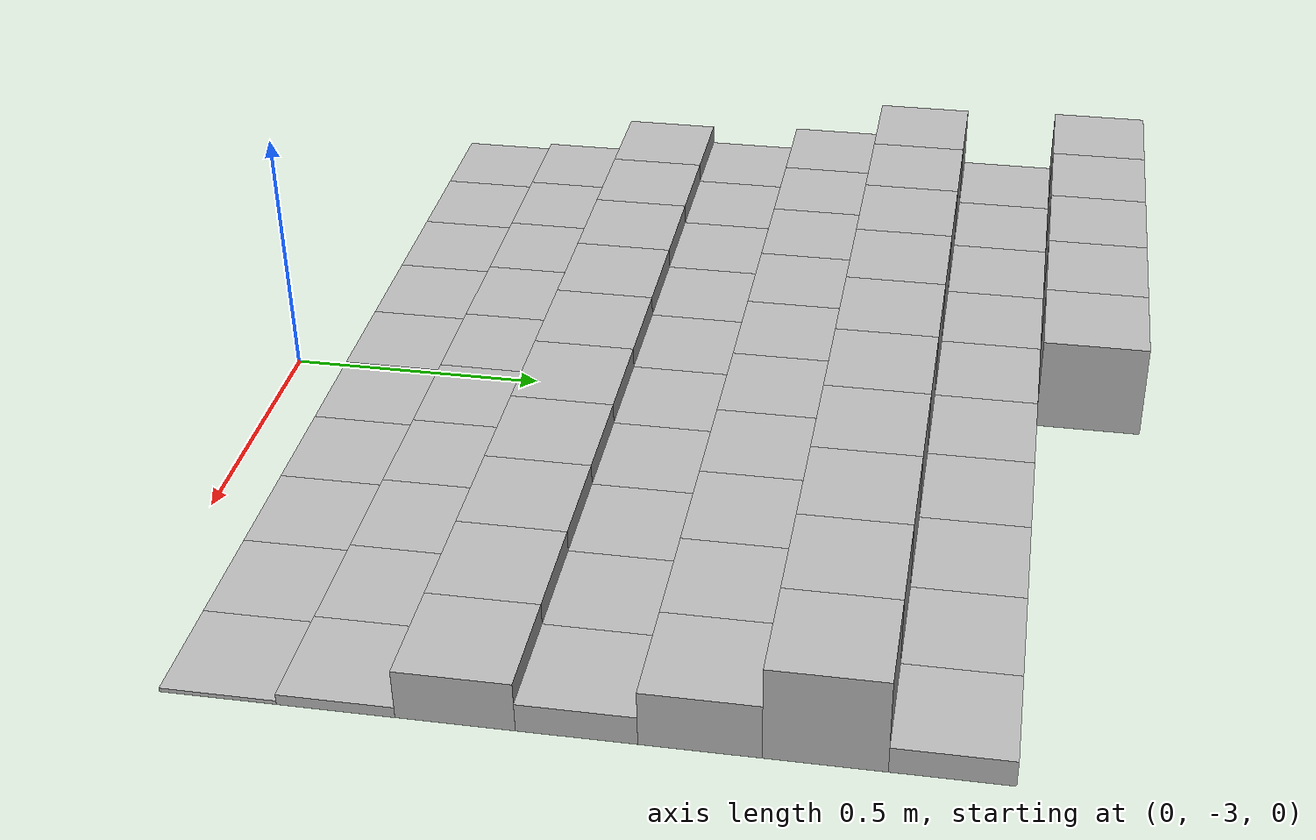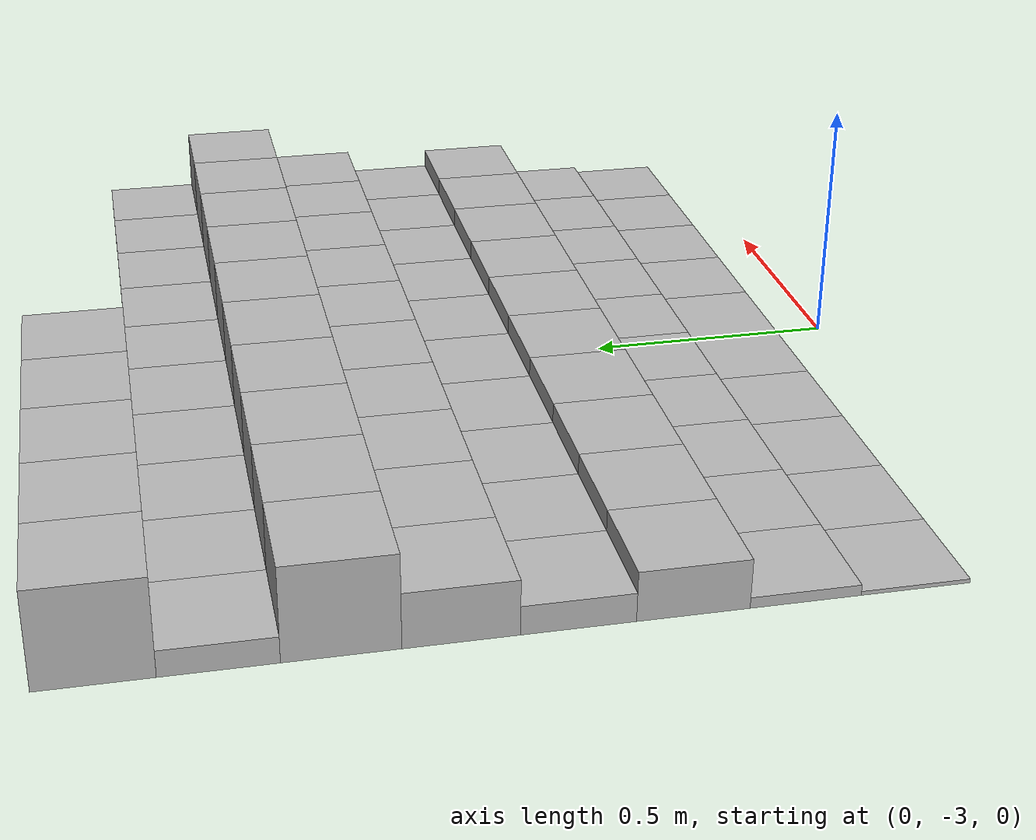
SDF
<sdf version="1.6">
 <model name="Terrain">
  <static>true</static>
  <link name="box_7_0">
   <pose>-0.9 -1.4 0.095913423902 0 0 0</pose>
   <inertial>
    <mass>1.0</mass>
    <inertia><ixx>0.0</ixx><ixy>0.0</ixy><ixz>0.0</ixz><iyy>0.0</iyy><iyz>0.0</iyz><izz>0.0</izz></inertia>
   </inertial>
   <collision name="collision"><geometry><box><size>0.2 0.2 0.191826847804</size></box></geometry></collision>
   <visual name="visual"><geometry><box><size>0.2 0.2 0.191826847804</size></box></geometry></visual>
  </link>
  <link name="box_7_1">
   <pose>-0.7 -1.4 0.095913423902 0 0 0</pose>
   <inertial>
    <mass>1.0</mass>
    <inertia><ixx>0.0</ixx><ixy>0.0</ixy><ixz>0.0</ixz><iyy>0.0</iyy><iyz>0.0</iyz><izz>0.0</izz></inertia>
   </inertial>
   <collision name="collision"><geometry><box><size>0.2 0.2 0.191826847804</size></box></geometry></collision>
   <visual name="visual"><geometry><box><size>0.2 0.2 0.191826847804</size></box></geometry></visual>
  </link>
  <link name="box_7_2">
   <pose>-0.5 -1.4 0.095913423902 0 0 0</pose>
   <inertial>
    <mass>1.0</mass>
    <inertia><ixx>0.0</ixx><ixy>0.0</ixy><ixz>0.0</ixz><iyy>0.0</iyy><iyz>0.0</iyz><izz>0.0</izz></inertia>
   </inertial>
   <collision name="collision"><geometry><box><size>0.2 0.2 0.191826847804</size></box></geometry></collision>
   <visual name="visual"><geometry><box><size>0.2 0.2 0.191826847804</size></box></geometry></visual>
  </link>
  <link name="box_7_3">
   <pose>-0.3 -1.4 0.095913423902 0 0 0</pose>
   <inertial>
    <mass>1.0</mass>
    <inertia><ixx>0.0</ixx><ixy>0.0</ixy><ixz>0.0</ixz><iyy>0.0</iyy><iyz>0.0</iyz><izz>0.0</izz></inertia>
   </inertial>
   <collision name="collision"><geometry><box><size>0.2 0.2 0.191826847804</size></box></geometry></collision>
   <visual name="visual"><geometry><box><size>0.2 0.2 0.191826847804</size></box></geometry></visual>
  </link>
  <link name="box_7_4">
   <pose>-0.1 -1.4 0.095913423902 0 0 0</pose>
   <inertial>
    <mass>1.0</mass>
    <inertia><ixx>0.0</ixx><ixy>0.0</ixy><ixz>0.0</ixz><iyy>0.0</iyy><iyz>0.0</iyz><izz>0.0</izz></inertia>
   </inertial>
   <collision name="collision"><geometry><box><size>0.2 0.2 0.191826847804</size></box></geometry></collision>
   <visual name="visual"><geometry><box><size>0.2 0.2 0.191826847804</size></box></geometry></visual>
  </link>
  <link name="box_8_0">
   <pose>-0.9 -1.6 0.0256300367916 0 0 0</pose>
   <inertial>
    <mass>1.0</mass>
    <inertia><ixx>0.0</ixx><ixy>0.0</ixy><ixz>0.0</ixz><iyy>0.0</iyy><iyz>0.0</iyz><izz>0.0</izz></inertia>
   </inertial>
   <collision name="collision"><geometry><box><size>0.2 0.2 0.0512600735831</size></box></geometry></collision>
   <visual name="visual"><geometry><box><size>0.2 0.2 0.0512600735831</size></box></geometry></visual>
  </link>
  <link name="box_8_1">
   <pose>-0.7 -1.6 0.0256300367916 0 0 0</pose>
   <inertial>
    <mass>1.0</mass>
    <inertia><ixx>0.0</ixx><ixy>0.0</ixy><ixz>0.0</ixz><iyy>0.0</iyy><iyz>0.0</iyz><izz>0.0</izz></inertia>
   </inertial>
   <collision name="collision"><geometry><box><size>0.2 0.2 0.0512600735831</size></box></geometry></collision>
   <visual name="visual"><geometry><box><size>0.2 0.2 0.0512600735831</size></box></geometry></visual>
  </link>
  <link name="box_8_2">
   <pose>-0.5 -1.6 0.0256300367916 0 0 0</pose>
   <inertial>
    <mass>1.0</mass>
    <inertia><ixx>0.0</ixx><ixy>0.0</ixy><ixz>0.0</ixz><iyy>0.0</iyy><iyz>0.0</iyz><izz>0.0</izz></inertia>
   </inertial>
   <collision name="collision"><geometry><box><size>0.2 0.2 0.0512600735831</size></box></geometry></collision>
   <visual name="visual"><geometry><box><size>0.2 0.2 0.0512600735831</size></box></geometry></visual>
  </link>
  <link name="box_8_3">
   <pose>-0.3 -1.6 0.0256300367916 0 0 0</pose>
   <inertial>
    <mass>1.0</mass>
    <inertia><ixx>0.0</ixx><ixy>0.0</ixy><ixz>0.0</ixz><iyy>0.0</iyy><iyz>0.0</iyz><izz>0.0</izz></inertia>
   </inertial>
   <collision name="collision"><geometry><box><size>0.2 0.2 0.0512600735831</size></box></geometry></collision>
   <visual name="visual"><geometry><box><size>0.2 0.2 0.0512600735831</size></box></geometry></visual>
  </link>
  <link name="box_8_4">
   <pose>-0.1 -1.6 0.0256300367916 0 0 0</pose>
   <inertial>
    <mass>1.0</mass>
    <inertia><ixx>0.0</ixx><ixy>0.0</ixy><ixz>0.0</ixz><iyy>0.0</iyy><iyz>0.0</iyz><izz>0.0</izz></inertia>
   </inertial>
   <collision name="collision"><geometry><box><size>0.2 0.2 0.0512600735831</size></box></geometry></collision>
   <visual name="visual"><geometry><box><size>0.2 0.2 0.0512600735831</size></box></geometry></visual>
  </link>
  <link name="box_8_5">
   <pose>0.1 -1.6 0.0256300367916 0 0 0</pose>
   <inertial>
    <mass>1.0</mass>
    <inertia><ixx>0.0</ixx><ixy>0.0</ixy><ixz>0.0</ixz><iyy>0.0</iyy><iyz>0.0</iyz><izz>0.0</izz></inertia>
   </inertial>
   <collision name="collision"><geometry><box><size>0.2 0.2 0.0512600735831</size></box></geometry></collision>
   <visual name="visual"><geometry><box><size>0.2 0.2 0.0512600735831</size></box></geometry></visual>
  </link>
  <link name="box_8_6">
   <pose>0.3 -1.6 0.0256300367916 0 0 0</pose>
   <inertial>
    <mass>1.0</mass>
    <inertia><ixx>0.0</ixx><ixy>0.0</ixy><ixz>0.0</ixz><iyy>0.0</iyy><iyz>0.0</iyz><izz>0.0</izz></inertia>
   </inertial>
   <collision name="collision"><geometry><box><size>0.2 0.2 0.0512600735831</size></box></geometry></collision>
   <visual name="visual"><geometry><box><size>0.2 0.2 0.0512600735831</size></box></geometry></visual>
  </link>
  <link name="box_8_7">
   <pose>0.5 -1.6 0.0256300367916 0 0 0</pose>
   <inertial>
    <mass>1.0</mass>
    <inertia><ixx>0.0</ixx><ixy>0.0</ixy><ixz>0.0</ixz><iyy>0.0</iyy><iyz>0.0</iyz><izz>0.0</izz></inertia>
   </inertial>
   <collision name="collision"><geometry><box><size>0.2 0.2 0.0512600735831</size></box></geometry></collision>
   <visual name="visual"><geometry><box><size>0.2 0.2 0.0512600735831</size></box></geometry></visual>
  </link>
  <link name="box_8_8">
   <pose>0.7 -1.6 0.0256300367916 0 0 0</pose>
   <inertial>
    <mass>1.0</mass>
    <inertia><ixx>0.0</ixx><ixy>0.0</ixy><ixz>0.0</ixz><iyy>0.0</iyy><iyz>0.0</iyz><izz>0.0</izz></inertia>
   </inertial>
   <collision name="collision"><geometry><box><size>0.2 0.2 0.0512600735831</size></box></geometry></collision>
   <visual name="visual"><geometry><box><size>0.2 0.2 0.0512600735831</size></box></geometry></visual>
  </link>
  <link name="box_8_9">
   <pose>0.9 -1.6 0.0256300367916 0 0 0</pose>
   <inertial>
    <mass>1.0</mass>
    <inertia><ixx>0.0</ixx><ixy>0.0</ixy><ixz>0.0</ixz><iyy>0.0</iyy><iyz>0.0</iyz><izz>0.0</izz></inertia>
   </inertial>
   <collision name="collision"><geometry><box><size>0.2 0.2 0.0512600735831</size></box></geometry></collision>
   <visual name="visual"><geometry><box><size>0.2 0.2 0.0512600735831</size></box></geometry></visual>
  </link>
  <link name="box_9_0">
   <pose>-0.9 -1.8 0.092249750525 0 0 0</pose>
   <inertial>
    <mass>1.0</mass>
    <inertia><ixx>0.0</ixx><ixy>0.0</ixy><ixz>0.0</ixz><iyy>0.0</iyy><iyz>0.0</iyz><izz>0.0</izz></inertia>
   </inertial>
   <collision name="collision"><geometry><box><size>0.2 0.2 0.18449950105</size></box></geometry></collision>
   <visual name="visual"><geometry><box><size>0.2 0.2 0.18449950105</size></box></geometry></visual>
  </link>
  <link name="box_9_1">
   <pose>-0.7 -1.8 0.092249750525 0 0 0</pose>
   <inertial>
    <mass>1.0</mass>
    <inertia><ixx>0.0</ixx><ixy>0.0</ixy><ixz>0.0</ixz><iyy>0.0</iyy><iyz>0.0</iyz><izz>0.0</izz></inertia>
   </inertial>
   <collision name="collision"><geometry><box><size>0.2 0.2 0.18449950105</size></box></geometry></collision>
   <visual name="visual"><geometry><box><size>0.2 0.2 0.18449950105</size></box></geometry></visual>
  </link>
  <link name="box_9_2">
   <pose>-0.5 -1.8 0.092249750525 0 0 0</pose>
   <inertial>
    <mass>1.0</mass>
    <inertia><ixx>0.0</ixx><ixy>0.0</ixy><ixz>0.0</ixz><iyy>0.0</iyy><iyz>0.0</iyz><izz>0.0</izz></inertia>
   </inertial>
   <collision name="collision"><geometry><box><size>0.2 0.2 0.18449950105</size></box></geometry></collision>
   <visual name="visual"><geometry><box><size>0.2 0.2 0.18449950105</size></box></geometry></visual>
  </link>
  <link name="box_9_3">
   <pose>-0.3 -1.8 0.092249750525 0 0 0</pose>
   <inertial>
    <mass>1.0</mass>
    <inertia><ixx>0.0</ixx><ixy>0.0</ixy><ixz>0.0</ixz><iyy>0.0</iyy><iyz>0.0</iyz><izz>0.0</izz></inertia>
   </inertial>
   <collision name="collision"><geometry><box><size>0.2 0.2 0.18449950105</size></box></geometry></collision>
   <visual name="visual"><geometry><box><size>0.2 0.2 0.18449950105</size></box></geometry></visual>
  </link>
  <link name="box_9_4">
   <pose>-0.1 -1.8 0.092249750525 0 0 0</pose>
   <inertial>
    <mass>1.0</mass>
    <inertia><ixx>0.0</ixx><ixy>0.0</ixy><ixz>0.0</ixz><iyy>0.0</iyy><iyz>0.0</iyz><izz>0.0</izz></inertia>
   </inertial>
   <collision name="collision"><geometry><box><size>0.2 0.2 0.18449950105</size></box></geometry></collision>
   <visual name="visual"><geometry><box><size>0.2 0.2 0.18449950105</size></box></geometry></visual>
  </link>
  <link name="box_9_5">
   <pose>0.1 -1.8 0.092249750525 0 0 0</pose>
   <inertial>
    <mass>1.0</mass>
    <inertia><ixx>0.0</ixx><ixy>0.0</ixy><ixz>0.0</ixz><iyy>0.0</iyy><iyz>0.0</iyz><izz>0.0</izz></inertia>
   </inertial>
   <collision name="collision"><geometry><box><size>0.2 0.2 0.18449950105</size></box></geometry></collision>
   <visual name="visual"><geometry><box><size>0.2 0.2 0.18449950105</size></box></geometry></visual>
  </link>
  <link name="box_9_6">
   <pose>0.3 -1.8 0.092249750525 0 0 0</pose>
   <inertial>
    <mass>1.0</mass>
    <inertia><ixx>0.0</ixx><ixy>0.0</ixy><ixz>0.0</ixz><iyy>0.0</iyy><iyz>0.0</iyz><izz>0.0</izz></inertia>
   </inertial>
   <collision name="collision"><geometry><box><size>0.2 0.2 0.18449950105</size></box></geometry></collision>
   <visual name="visual"><geometry><box><size>0.2 0.2 0.18449950105</size></box></geometry></visual>
  </link>
  <link name="box_9_7">
   <pose>0.5 -1.8 0.092249750525 0 0 0</pose>
   <inertial>
    <mass>1.0</mass>
    <inertia><ixx>0.0</ixx><ixy>0.0</ixy><ixz>0.0</ixz><iyy>0.0</iyy><iyz>0.0</iyz><izz>0.0</izz></inertia>
   </inertial>
   <collision name="collision"><geometry><box><size>0.2 0.2 0.18449950105</size></box></geometry></collision>
   <visual name="visual"><geometry><box><size>0.2 0.2 0.18449950105</size></box></geometry></visual>
  </link>
  <link name="box_9_8">
   <pose>0.7 -1.8 0.092249750525 0 0 0</pose>
   <inertial>
    <mass>1.0</mass>
    <inertia><ixx>0.0</ixx><ixy>0.0</ixy><ixz>0.0</ixz><iyy>0.0</iyy><iyz>0.0</iyz><izz>0.0</izz></inertia>
   </inertial>
   <collision name="collision"><geometry><box><size>0.2 0.2 0.18449950105</size></box></geometry></collision>
   <visual name="visual"><geometry><box><size>0.2 0.2 0.18449950105</size></box></geometry></visual>
  </link>
  <link name="box_9_9">
   <pose>0.9 -1.8 0.092249750525 0 0 0</pose>
   <inertial>
    <mass>1.0</mass>
    <inertia><ixx>0.0</ixx><ixy>0.0</ixy><ixz>0.0</ixz><iyy>0.0</iyy><iyz>0.0</iyz><izz>0.0</izz></inertia>
   </inertial>
   <collision name="collision"><geometry><box><size>0.2 0.2 0.18449950105</size></box></geometry></collision>
   <visual name="visual"><geometry><box><size>0.2 0.2 0.18449950105</size></box></geometry></visual>
  </link>
  <link name="box_10_0">
   <pose>-0.9 -2.0 0.0541871951519 0 0 0</pose>
   <inertial>
    <mass>1.0</mass>
    <inertia><ixx>0.0</ixx><ixy>0.0</ixy><ixz>0.0</ixz><iyy>0.0</iyy><iyz>0.0</iyz><izz>0.0</izz></inertia>
   </inertial>
   <collision name="collision"><geometry><box><size>0.2 0.2 0.108374390304</size></box></geometry></collision>
   <visual name="visual"><geometry><box><size>0.2 0.2 0.108374390304</size></box></geometry></visual>
  </link>
  <link name="box_10_1">
   <pose>-0.7 -2.0 0.0541871951519 0 0 0</pose>
   <inertial>
    <mass>1.0</mass>
    <inertia><ixx>0.0</ixx><ixy>0.0</ixy><ixz>0.0</ixz><iyy>0.0</iyy><iyz>0.0</iyz><izz>0.0</izz></inertia>
   </inertial>
   <collision name="collision"><geometry><box><size>0.2 0.2 0.108374390304</size></box></geometry></collision>
   <visual name="visual"><geometry><box><size>0.2 0.2 0.108374390304</size></box></geometry></visual>
  </link>
  <link name="box_10_2">
   <pose>-0.5 -2.0 0.0541871951519 0 0 0</pose>
   <inertial>
    <mass>1.0</mass>
    <inertia><ixx>0.0</ixx><ixy>0.0</ixy><ixz>0.0</ixz><iyy>0.0</iyy><iyz>0.0</iyz><izz>0.0</izz></inertia>
   </inertial>
   <collision name="collision"><geometry><box><size>0.2 0.2 0.108374390304</size></box></geometry></collision>
   <visual name="visual"><geometry><box><size>0.2 0.2 0.108374390304</size></box></geometry></visual>
  </link>
  <link name="box_10_3">
   <pose>-0.3 -2.0 0.0541871951519 0 0 0</pose>
   <inertial>
    <mass>1.0</mass>
    <inertia><ixx>0.0</ixx><ixy>0.0</ixy><ixz>0.0</ixz><iyy>0.0</iyy><iyz>0.0</iyz><izz>0.0</izz></inertia>
   </inertial>
   <collision name="collision"><geometry><box><size>0.2 0.2 0.108374390304</size></box></geometry></collision>
   <visual name="visual"><geometry><box><size>0.2 0.2 0.108374390304</size></box></geometry></visual>
  </link>
  <link name="box_10_4">
   <pose>-0.1 -2.0 0.0541871951519 0 0 0</pose>
   <inertial>
    <mass>1.0</mass>
    <inertia><ixx>0.0</ixx><ixy>0.0</ixy><ixz>0.0</ixz><iyy>0.0</iyy><iyz>0.0</iyz><izz>0.0</izz></inertia>
   </inertial>
   <collision name="collision"><geometry><box><size>0.2 0.2 0.108374390304</size></box></geometry></collision>
   <visual name="visual"><geometry><box><size>0.2 0.2 0.108374390304</size></box></geometry></visual>
  </link>
  <link name="box_10_5">
   <pose>0.1 -2.0 0.0541871951519 0 0 0</pose>
   <inertial>
    <mass>1.0</mass>
    <inertia><ixx>0.0</ixx><ixy>0.0</ixy><ixz>0.0</ixz><iyy>0.0</iyy><iyz>0.0</iyz><izz>0.0</izz></inertia>
   </inertial>
   <collision name="collision"><geometry><box><size>0.2 0.2 0.108374390304</size></box></geometry></collision>
   <visual name="visual"><geometry><box><size>0.2 0.2 0.108374390304</size></box></geometry></visual>
  </link>
  <link name="box_10_6">
   <pose>0.3 -2.0 0.0541871951519 0 0 0</pose>
   <inertial>
    <mass>1.0</mass>
    <inertia><ixx>0.0</ixx><ixy>0.0</ixy><ixz>0.0</ixz><iyy>0.0</iyy><iyz>0.0</iyz><izz>0.0</izz></inertia>
   </inertial>
   <collision name="collision"><geometry><box><size>0.2 0.2 0.108374390304</size></box></geometry></collision>
   <visual name="visual"><geometry><box><size>0.2 0.2 0.108374390304</size></box></geometry></visual>
  </link>
  <link name="box_10_7">
   <pose>0.5 -2.0 0.0541871951519 0 0 0</pose>
   <inertial>
    <mass>1.0</mass>
    <inertia><ixx>0.0</ixx><ixy>0.0</ixy><ixz>0.0</ixz><iyy>0.0</iyy><iyz>0.0</iyz><izz>0.0</izz></inertia>
   </inertial>
   <collision name="collision"><geometry><box><size>0.2 0.2 0.108374390304</size></box></geometry></collision>
   <visual name="visual"><geometry><box><size>0.2 0.2 0.108374390304</size></box></geometry></visual>
  </link>
  <link name="box_10_8">
   <pose>0.7 -2.0 0.0541871951519 0 0 0</pose>
   <inertial>
    <mass>1.0</mass>
    <inertia><ixx>0.0</ixx><ixy>0.0</ixy><ixz>0.0</ixz><iyy>0.0</iyy><iyz>0.0</iyz><izz>0.0</izz></inertia>
   </inertial>
   <collision name="collision"><geometry><box><size>0.2 0.2 0.108374390304</size></box></geometry></collision>
   <visual name="visual"><geometry><box><size>0.2 0.2 0.108374390304</size></box></geometry></visual>
  </link>
  <link name="box_10_9">
   <pose>0.9 -2.0 0.0541871951519 0 0 0</pose>
   <inertial>
    <mass>1.0</mass>
    <inertia><ixx>0.0</ixx><ixy>0.0</ixy><ixz>0.0</ixz><iyy>0.0</iyy><iyz>0.0</iyz><izz>0.0</izz></inertia>
   </inertial>
   <collision name="collision"><geometry><box><size>0.2 0.2 0.108374390304</size></box></geometry></collision>
   <visual name="visual"><geometry><box><size>0.2 0.2 0.108374390304</size></box></geometry></visual>
  </link>
  <link name="box_11_0">
   <pose>-0.9 -2.2 0.0282259502266 0 0 0</pose>
   <inertial>
    <mass>1.0</mass>
    <inertia><ixx>0.0</ixx><ixy>0.0</ixy><ixz>0.0</ixz><iyy>0.0</iyy><iyz>0.0</iyz><izz>0.0</izz></inertia>
   </inertial>
   <collision name="collision"><geometry><box><size>0.2 0.2 0.0564519004532</size></box></geometry></collision>
   <visual name="visual"><geometry><box><size>0.2 0.2 0.0564519004532</size></box></geometry></visual>
  </link>
  <link name="box_11_1">
   <pose>-0.7 -2.2 0.0282259502266 0 0 0</pose>
   <inertial>
    <mass>1.0</mass>
    <inertia><ixx>0.0</ixx><ixy>0.0</ixy><ixz>0.0</ixz><iyy>0.0</iyy><iyz>0.0</iyz><izz>0.0</izz></inertia>
   </inertial>
   <collision name="collision"><geometry><box><size>0.2 0.2 0.0564519004532</size></box></geometry></collision>
   <visual name="visual"><geometry><box><size>0.2 0.2 0.0564519004532</size></box></geometry></visual>
  </link>
  <link name="box_11_2">
   <pose>-0.5 -2.2 0.0282259502266 0 0 0</pose>
   <inertial>
    <mass>1.0</mass>
    <inertia><ixx>0.0</ixx><ixy>0.0</ixy><ixz>0.0</ixz><iyy>0.0</iyy><iyz>0.0</iyz><izz>0.0</izz></inertia>
   </inertial>
   <collision name="collision"><geometry><box><size>0.2 0.2 0.0564519004532</size></box></geometry></collision>
   <visual name="visual"><geometry><box><size>0.2 0.2 0.0564519004532</size></box></geometry></visual>
  </link>
  <link name="box_11_3">
   <pose>-0.3 -2.2 0.0282259502266 0 0 0</pose>
   <inertial>
    <mass>1.0</mass>
    <inertia><ixx>0.0</ixx><ixy>0.0</ixy><ixz>0.0</ixz><iyy>0.0</iyy><iyz>0.0</iyz><izz>0.0</izz></inertia>
   </inertial>
   <collision name="collision"><geometry><box><size>0.2 0.2 0.0564519004532</size></box></geometry></collision>
   <visual name="visual"><geometry><box><size>0.2 0.2 0.0564519004532</size></box></geometry></visual>
  </link>
  <link name="box_11_4">
   <pose>-0.1 -2.2 0.0282259502266 0 0 0</pose>
   <inertial>
    <mass>1.0</mass>
    <inertia><ixx>0.0</ixx><ixy>0.0</ixy><ixz>0.0</ixz><iyy>0.0</iyy><iyz>0.0</iyz><izz>0.0</izz></inertia>
   </inertial>
   <collision name="collision"><geometry><box><size>0.2 0.2 0.0564519004532</size></box></geometry></collision>
   <visual name="visual"><geometry><box><size>0.2 0.2 0.0564519004532</size></box></geometry></visual>
  </link>
  <link name="box_11_5">
   <pose>0.1 -2.2 0.0282259502266 0 0 0</pose>
   <inertial>
    <mass>1.0</mass>
    <inertia><ixx>0.0</ixx><ixy>0.0</ixy><ixz>0.0</ixz><iyy>0.0</iyy><iyz>0.0</iyz><izz>0.0</izz></inertia>
   </inertial>
   <collision name="collision"><geometry><box><size>0.2 0.2 0.0564519004532</size></box></geometry></collision>
   <visual name="visual"><geometry><box><size>0.2 0.2 0.0564519004532</size></box></geometry></visual>
  </link>
  <link name="box_11_6">
   <pose>0.3 -2.2 0.0282259502266 0 0 0</pose>
   <inertial>
    <mass>1.0</mass>
    <inertia><ixx>0.0</ixx><ixy>0.0</ixy><ixz>0.0</ixz><iyy>0.0</iyy><iyz>0.0</iyz><izz>0.0</izz></inertia>
   </inertial>
   <collision name="collision"><geometry><box><size>0.2 0.2 0.0564519004532</size></box></geometry></collision>
   <visual name="visual"><geometry><box><size>0.2 0.2 0.0564519004532</size></box></geometry></visual>
  </link>
  <link name="box_11_7">
   <pose>0.5 -2.2 0.0282259502266 0 0 0</pose>
   <inertial>
    <mass>1.0</mass>
    <inertia><ixx>0.0</ixx><ixy>0.0</ixy><ixz>0.0</ixz><iyy>0.0</iyy><iyz>0.0</iyz><izz>0.0</izz></inertia>
   </inertial>
   <collision name="collision"><geometry><box><size>0.2 0.2 0.0564519004532</size></box></geometry></collision>
   <visual name="visual"><geometry><box><size>0.2 0.2 0.0564519004532</size></box></geometry></visual>
  </link>
  <link name="box_11_8">
   <pose>0.7 -2.2 0.0282259502266 0 0 0</pose>
   <inertial>
    <mass>1.0</mass>
    <inertia><ixx>0.0</ixx><ixy>0.0</ixy><ixz>0.0</ixz><iyy>0.0</iyy><iyz>0.0</iyz><izz>0.0</izz></inertia>
   </inertial>
   <collision name="collision"><geometry><box><size>0.2 0.2 0.0564519004532</size></box></geometry></collision>
   <visual name="visual"><geometry><box><size>0.2 0.2 0.0564519004532</size></box></geometry></visual>
  </link>
  <link name="box_11_9">
   <pose>0.9 -2.2 0.0282259502266 0 0 0</pose>
   <inertial>
    <mass>1.0</mass>
    <inertia><ixx>0.0</ixx><ixy>0.0</ixy><ixz>0.0</ixz><iyy>0.0</iyy><iyz>0.0</iyz><izz>0.0</izz></inertia>
   </inertial>
   <collision name="collision"><geometry><box><size>0.2 0.2 0.0564519004532</size></box></geometry></collision>
   <visual name="visual"><geometry><box><size>0.2 0.2 0.0564519004532</size></box></geometry></visual>
  </link>
  <link name="box_12_0">
   <pose>-0.9 -2.4 0.0489877813391 0 0 0</pose>
   <inertial>
    <mass>1.0</mass>
    <inertia><ixx>0.0</ixx><ixy>0.0</ixy><ixz>0.0</ixz><iyy>0.0</iyy><iyz>0.0</iyz><izz>0.0</izz></inertia>
   </inertial>
   <collision name="collision"><geometry><box><size>0.2 0.2 0.0979755626782</size></box></geometry></collision>
   <visual name="visual"><geometry><box><size>0.2 0.2 0.0979755626782</size></box></geometry></visual>
  </link>
  <link name="box_12_1">
   <pose>-0.7 -2.4 0.0489877813391 0 0 0</pose>
   <inertial>
    <mass>1.0</mass>
    <inertia><ixx>0.0</ixx><ixy>0.0</ixy><ixz>0.0</ixz><iyy>0.0</iyy><iyz>0.0</iyz><izz>0.0</izz></inertia>
   </inertial>
   <collision name="collision"><geometry><box><size>0.2 0.2 0.0979755626782</size></box></geometry></collision>
   <visual name="visual"><geometry><box><size>0.2 0.2 0.0979755626782</size></box></geometry></visual>
  </link>
  <link name="box_12_2">
   <pose>-0.5 -2.4 0.0489877813391 0 0 0</pose>
   <inertial>
    <mass>1.0</mass>
    <inertia><ixx>0.0</ixx><ixy>0.0</ixy><ixz>0.0</ixz><iyy>0.0</iyy><iyz>0.0</iyz><izz>0.0</izz></inertia>
   </inertial>
   <collision name="collision"><geometry><box><size>0.2 0.2 0.0979755626782</size></box></geometry></collision>
   <visual name="visual"><geometry><box><size>0.2 0.2 0.0979755626782</size></box></geometry></visual>
  </link>
  <link name="box_12_3">
   <pose>-0.3 -2.4 0.0489877813391 0 0 0</pose>
   <inertial>
    <mass>1.0</mass>
    <inertia><ixx>0.0</ixx><ixy>0.0</ixy><ixz>0.0</ixz><iyy>0.0</iyy><iyz>0.0</iyz><izz>0.0</izz></inertia>
   </inertial>
   <collision name="collision"><geometry><box><size>0.2 0.2 0.0979755626782</size></box></geometry></collision>
   <visual name="visual"><geometry><box><size>0.2 0.2 0.0979755626782</size></box></geometry></visual>
  </link>
  <link name="box_12_4">
   <pose>-0.1 -2.4 0.0489877813391 0 0 0</pose>
   <inertial>
    <mass>1.0</mass>
    <inertia><ixx>0.0</ixx><ixy>0.0</ixy><ixz>0.0</ixz><iyy>0.0</iyy><iyz>0.0</iyz><izz>0.0</izz></inertia>
   </inertial>
   <collision name="collision"><geometry><box><size>0.2 0.2 0.0979755626782</size></box></geometry></collision>
   <visual name="visual"><geometry><box><size>0.2 0.2 0.0979755626782</size></box></geometry></visual>
  </link>
  <link name="box_12_5">
   <pose>0.1 -2.4 0.0489877813391 0 0 0</pose>
   <inertial>
    <mass>1.0</mass>
    <inertia><ixx>0.0</ixx><ixy>0.0</ixy><ixz>0.0</ixz><iyy>0.0</iyy><iyz>0.0</iyz><izz>0.0</izz></inertia>
   </inertial>
   <collision name="collision"><geometry><box><size>0.2 0.2 0.0979755626782</size></box></geometry></collision>
   <visual name="visual"><geometry><box><size>0.2 0.2 0.0979755626782</size></box></geometry></visual>
  </link>
  <link name="box_12_6">
   <pose>0.3 -2.4 0.0489877813391 0 0 0</pose>
   <inertial>
    <mass>1.0</mass>
    <inertia><ixx>0.0</ixx><ixy>0.0</ixy><ixz>0.0</ixz><iyy>0.0</iyy><iyz>0.0</iyz><izz>0.0</izz></inertia>
   </inertial>
   <collision name="collision"><geometry><box><size>0.2 0.2 0.0979755626782</size></box></geometry></collision>
   <visual name="visual"><geometry><box><size>0.2 0.2 0.0979755626782</size></box></geometry></visual>
  </link>
  <link name="box_12_7">
   <pose>0.5 -2.4 0.0489877813391 0 0 0</pose>
   <inertial>
    <mass>1.0</mass>
    <inertia><ixx>0.0</ixx><ixy>0.0</ixy><ixz>0.0</ixz><iyy>0.0</iyy><iyz>0.0</iyz><izz>0.0</izz></inertia>
   </inertial>
   <collision name="collision"><geometry><box><size>0.2 0.2 0.0979755626782</size></box></geometry></collision>
   <visual name="visual"><geometry><box><size>0.2 0.2 0.0979755626782</size></box></geometry></visual>
  </link>
  <link name="box_12_8">
   <pose>0.7 -2.4 0.0489877813391 0 0 0</pose>
   <inertial>
    <mass>1.0</mass>
    <inertia><ixx>0.0</ixx><ixy>0.0</ixy><ixz>0.0</ixz><iyy>0.0</iyy><iyz>0.0</iyz><izz>0.0</izz></inertia>
   </inertial>
   <collision name="collision"><geometry><box><size>0.2 0.2 0.0979755626782</size></box></geometry></collision>
   <visual name="visual"><geometry><box><size>0.2 0.2 0.0979755626782</size></box></geometry></visual>
  </link>
  <link name="box_12_9">
   <pose>0.9 -2.4 0.0489877813391 0 0 0</pose>
   <inertial>
    <mass>1.0</mass>
    <inertia><ixx>0.0</ixx><ixy>0.0</ixy><ixz>0.0</ixz><iyy>0.0</iyy><iyz>0.0</iyz><izz>0.0</izz></inertia>
   </inertial>
   <collision name="collision"><geometry><box><size>0.2 0.2 0.0979755626782</size></box></geometry></collision>
   <visual name="visual"><geometry><box><size>0.2 0.2 0.0979755626782</size></box></geometry></visual>
  </link>
  <link name="box_13_0">
   <pose>-0.9 -2.6 0.0105278987553 0 0 0</pose>
   <inertial>
    <mass>1.0</mass>
    <inertia><ixx>0.0</ixx><ixy>0.0</ixy><ixz>0.0</ixz><iyy>0.0</iyy><iyz>0.0</iyz><izz>0.0</izz></inertia>
   </inertial>
   <collision name="collision"><geometry><box><size>0.2 0.2 0.0210557975106</size></box></geometry></collision>
   <visual name="visual"><geometry><box><size>0.2 0.2 0.0210557975106</size></box></geometry></visual>
  </link>
  <link name="box_13_1">
   <pose>-0.7 -2.6 0.0105278987553 0 0 0</pose>
   <inertial>
    <mass>1.0</mass>
    <inertia><ixx>0.0</ixx><ixy>0.0</ixy><ixz>0.0</ixz><iyy>0.0</iyy><iyz>0.0</iyz><izz>0.0</izz></inertia>
   </inertial>
   <collision name="collision"><geometry><box><size>0.2 0.2 0.0210557975106</size></box></geometry></collision>
   <visual name="visual"><geometry><box><size>0.2 0.2 0.0210557975106</size></box></geometry></visual>
  </link>
  <link name="box_13_2">
   <pose>-0.5 -2.6 0.0105278987553 0 0 0</pose>
   <inertial>
    <mass>1.0</mass>
    <inertia><ixx>0.0</ixx><ixy>0.0</ixy><ixz>0.0</ixz><iyy>0.0</iyy><iyz>0.0</iyz><izz>0.0</izz></inertia>
   </inertial>
   <collision name="collision"><geometry><box><size>0.2 0.2 0.0210557975106</size></box></geometry></collision>
   <visual name="visual"><geometry><box><size>0.2 0.2 0.0210557975106</size></box></geometry></visual>
  </link>
  <link name="box_13_3">
   <pose>-0.3 -2.6 0.0105278987553 0 0 0</pose>
   <inertial>
    <mass>1.0</mass>
    <inertia><ixx>0.0</ixx><ixy>0.0</ixy><ixz>0.0</ixz><iyy>0.0</iyy><iyz>0.0</iyz><izz>0.0</izz></inertia>
   </inertial>
   <collision name="collision"><geometry><box><size>0.2 0.2 0.0210557975106</size></box></geometry></collision>
   <visual name="visual"><geometry><box><size>0.2 0.2 0.0210557975106</size></box></geometry></visual>
  </link>
  <link name="box_13_4">
   <pose>-0.1 -2.6 0.0105278987553 0 0 0</pose>
   <inertial>
    <mass>1.0</mass>
    <inertia><ixx>0.0</ixx><ixy>0.0</ixy><ixz>0.0</ixz><iyy>0.0</iyy><iyz>0.0</iyz><izz>0.0</izz></inertia>
   </inertial>
   <collision name="collision"><geometry><box><size>0.2 0.2 0.0210557975106</size></box></geometry></collision>
   <visual name="visual"><geometry><box><size>0.2 0.2 0.0210557975106</size></box></geometry></visual>
  </link>
  <link name="box_13_5">
   <pose>0.1 -2.6 0.0105278987553 0 0 0</pose>
   <inertial>
    <mass>1.0</mass>
    <inertia><ixx>0.0</ixx><ixy>0.0</ixy><ixz>0.0</ixz><iyy>0.0</iyy><iyz>0.0</iyz><izz>0.0</izz></inertia>
   </inertial>
   <collision name="collision"><geometry><box><size>0.2 0.2 0.0210557975106</size></box></geometry></collision>
   <visual name="visual"><geometry><box><size>0.2 0.2 0.0210557975106</size></box></geometry></visual>
  </link>
  <link name="box_13_6">
   <pose>0.3 -2.6 0.0105278987553 0 0 0</pose>
   <inertial>
    <mass>1.0</mass>
    <inertia><ixx>0.0</ixx><ixy>0.0</ixy><ixz>0.0</ixz><iyy>0.0</iyy><iyz>0.0</iyz><izz>0.0</izz></inertia>
   </inertial>
   <collision name="collision"><geometry><box><size>0.2 0.2 0.0210557975106</size></box></geometry></collision>
   <visual name="visual"><geometry><box><size>0.2 0.2 0.0210557975106</size></box></geometry></visual>
  </link>
  <link name="box_13_7">
   <pose>0.5 -2.6 0.0105278987553 0 0 0</pose>
   <inertial>
    <mass>1.0</mass>
    <inertia><ixx>0.0</ixx><ixy>0.0</ixy><ixz>0.0</ixz><iyy>0.0</iyy><iyz>0.0</iyz><izz>0.0</izz></inertia>
   </inertial>
   <collision name="collision"><geometry><box><size>0.2 0.2 0.0210557975106</size></box></geometry></collision>
   <visual name="visual"><geometry><box><size>0.2 0.2 0.0210557975106</size></box></geometry></visual>
  </link>
  <link name="box_13_8">
   <pose>0.7 -2.6 0.0105278987553 0 0 0</pose>
   <inertial>
    <mass>1.0</mass>
    <inertia><ixx>0.0</ixx><ixy>0.0</ixy><ixz>0.0</ixz><iyy>0.0</iyy><iyz>0.0</iyz><izz>0.0</izz></inertia>
   </inertial>
   <collision name="collision"><geometry><box><size>0.2 0.2 0.0210557975106</size></box></geometry></collision>
   <visual name="visual"><geometry><box><size>0.2 0.2 0.0210557975106</size></box></geometry></visual>
  </link>
  <link name="box_13_9">
   <pose>0.9 -2.6 0.0105278987553 0 0 0</pose>
   <inertial>
    <mass>1.0</mass>
    <inertia><ixx>0.0</ixx><ixy>0.0</ixy><ixz>0.0</ixz><iyy>0.0</iyy><iyz>0.0</iyz><izz>0.0</izz></inertia>
   </inertial>
   <collision name="collision"><geometry><box><size>0.2 0.2 0.0210557975106</size></box></geometry></collision>
   <visual name="visual"><geometry><box><size>0.2 0.2 0.0210557975106</size></box></geometry></visual>
  </link>
  <link name="box_14_0">
   <pose>-0.9 -2.8 0.00386172491007 0 0 0</pose>
   <inertial>
    <mass>1.0</mass>
    <inertia><ixx>0.0</ixx><ixy>0.0</ixy><ixz>0.0</ixz><iyy>0.0</iyy><iyz>0.0</iyz><izz>0.0</izz></inertia>
   </inertial>
   <collision name="collision"><geometry><box><size>0.2 0.2 0.00772344982014</size></box></geometry></collision>
   <visual name="visual"><geometry><box><size>0.2 0.2 0.00772344982014</size></box></geometry></visual>
  </link>
  <link name="box_14_1">
   <pose>-0.7 -2.8 0.00386172491007 0 0 0</pose>
   <inertial>
    <mass>1.0</mass>
    <inertia><ixx>0.0</ixx><ixy>0.0</ixy><ixz>0.0</ixz><iyy>0.0</iyy><iyz>0.0</iyz><izz>0.0</izz></inertia>
   </inertial>
   <collision name="collision"><geometry><box><size>0.2 0.2 0.00772344982014</size></box></geometry></collision>
   <visual name="visual"><geometry><box><size>0.2 0.2 0.00772344982014</size></box></geometry></visual>
  </link>
  <link name="box_14_2">
   <pose>-0.5 -2.8 0.00386172491007 0 0 0</pose>
   <inertial>
    <mass>1.0</mass>
    <inertia><ixx>0.0</ixx><ixy>0.0</ixy><ixz>0.0</ixz><iyy>0.0</iyy><iyz>0.0</iyz><izz>0.0</izz></inertia>
   </inertial>
   <collision name="collision"><geometry><box><size>0.2 0.2 0.00772344982014</size></box></geometry></collision>
   <visual name="visual"><geometry><box><size>0.2 0.2 0.00772344982014</size></box></geometry></visual>
  </link>
  <link name="box_14_3">
   <pose>-0.3 -2.8 0.00386172491007 0 0 0</pose>
   <inertial>
    <mass>1.0</mass>
    <inertia><ixx>0.0</ixx><ixy>0.0</ixy><ixz>0.0</ixz><iyy>0.0</iyy><iyz>0.0</iyz><izz>0.0</izz></inertia>
   </inertial>
   <collision name="collision"><geometry><box><size>0.2 0.2 0.00772344982014</size></box></geometry></collision>
   <visual name="visual"><geometry><box><size>0.2 0.2 0.00772344982014</size></box></geometry></visual>
  </link>
  <link name="box_14_4">
   <pose>-0.1 -2.8 0.00386172491007 0 0 0</pose>
   <inertial>
    <mass>1.0</mass>
    <inertia><ixx>0.0</ixx><ixy>0.0</ixy><ixz>0.0</ixz><iyy>0.0</iyy><iyz>0.0</iyz><izz>0.0</izz></inertia>
   </inertial>
   <collision name="collision"><geometry><box><size>0.2 0.2 0.00772344982014</size></box></geometry></collision>
   <visual name="visual"><geometry><box><size>0.2 0.2 0.00772344982014</size></box></geometry></visual>
  </link>
  <link name="box_14_5">
   <pose>0.1 -2.8 0.00386172491007 0 0 0</pose>
   <inertial>
    <mass>1.0</mass>
    <inertia><ixx>0.0</ixx><ixy>0.0</ixy><ixz>0.0</ixz><iyy>0.0</iyy><iyz>0.0</iyz><izz>0.0</izz></inertia>
   </inertial>
   <collision name="collision"><geometry><box><size>0.2 0.2 0.00772344982014</size></box></geometry></collision>
   <visual name="visual"><geometry><box><size>0.2 0.2 0.00772344982014</size></box></geometry></visual>
  </link>
  <link name="box_14_6">
   <pose>0.3 -2.8 0.00386172491007 0 0 0</pose>
   <inertial>
    <mass>1.0</mass>
    <inertia><ixx>0.0</ixx><ixy>0.0</ixy><ixz>0.0</ixz><iyy>0.0</iyy><iyz>0.0</iyz><izz>0.0</izz></inertia>
   </inertial>
   <collision name="collision"><geometry><box><size>0.2 0.2 0.00772344982014</size></box></geometry></collision>
   <visual name="visual"><geometry><box><size>0.2 0.2 0.00772344982014</size></box></geometry></visual>
  </link>
  <link name="box_14_7">
   <pose>0.5 -2.8 0.00386172491007 0 0 0</pose>
   <inertial>
    <mass>1.0</mass>
    <inertia><ixx>0.0</ixx><ixy>0.0</ixy><ixz>0.0</ixz><iyy>0.0</iyy><iyz>0.0</iyz><izz>0.0</izz></inertia>
   </inertial>
   <collision name="collision"><geometry><box><size>0.2 0.2 0.00772344982014</size></box></geometry></collision>
   <visual name="visual"><geometry><box><size>0.2 0.2 0.00772344982014</size></box></geometry></visual>
  </link>
  <link name="box_14_8">
   <pose>0.7 -2.8 0.00386172491007 0 0 0</pose>
   <inertial>
    <mass>1.0</mass>
    <inertia><ixx>0.0</ixx><ixy>0.0</ixy><ixz>0.0</ixz><iyy>0.0</iyy><iyz>0.0</iyz><izz>0.0</izz></inertia>
   </inertial>
   <collision name="collision"><geometry><box><size>0.2 0.2 0.00772344982014</size></box></geometry></collision>
   <visual name="visual"><geometry><box><size>0.2 0.2 0.00772344982014</size></box></geometry></visual>
  </link>
  <link name="box_14_9">
   <pose>0.9 -2.8 0.00386172491007 0 0 0</pose>
   <inertial>
    <mass>1.0</mass>
    <inertia><ixx>0.0</ixx><ixy>0.0</ixy><ixz>0.0</ixz><iyy>0.0</iyy><iyz>0.0</iyz><izz>0.0</izz></inertia>
   </inertial>
   <collision name="collision"><geometry><box><size>0.2 0.2 0.00772344982014</size></box></geometry></collision>
   <visual name="visual"><geometry><box><size>0.2 0.2 0.00772344982014</size></box></geometry></visual>
  </link>
 </model>
</sdf>
